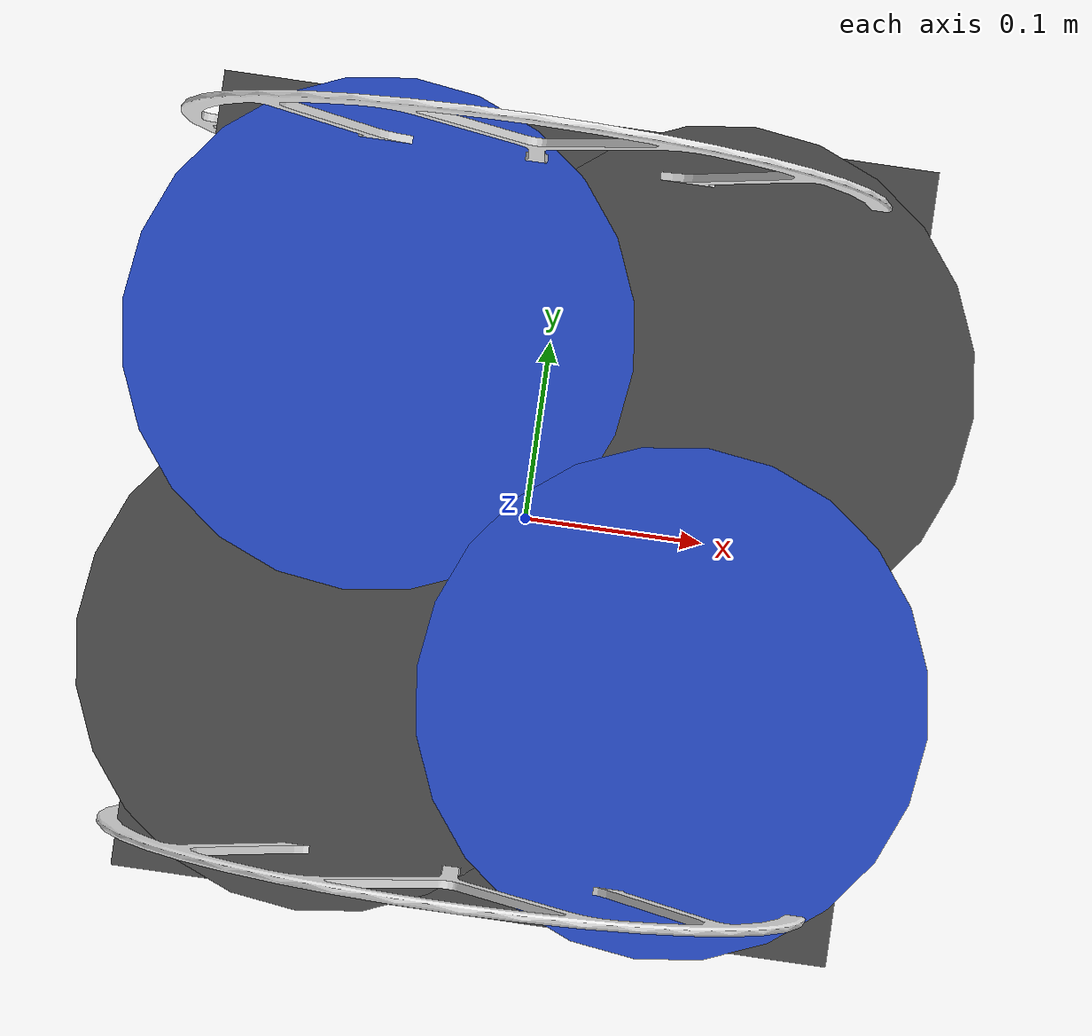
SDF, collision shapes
<?xml version="1.0"?>
<sdf version="1.5">
  <model name='iris_airground'>
    <include>
      <uri>model://AirGround</uri>
      <pose>0 0 0.18 0 0 0</pose>
    </include>

    <include>
      <uri>model://livox_laser</uri>
      <pose>0 0 0.18 0 0 0</pose>
    </include>

    <joint name="livox_laser_joint" type="fixed">
      <child>livox_laser::link</child>
      <parent>AirGround::base_link</parent>
      <axis>
        <xyz>0 0 1</xyz>
        <limit>
          <upper>0</upper>
          <lower>0</lower>
        </limit>
      </axis>
    </joint>

   <plugin name="arducopter_plugin" filename="libArduPilotPlugin.so">
      <fdm_addr>127.0.0.1</fdm_addr>
      <fdm_port_in>9002</fdm_port_in>
      <fdm_port_out>9003</fdm_port_out>
      <!--
          Require by APM :
          Only change model and gazebo from XYZ to XY-Z coordinates
      -->
      <modelXYZToAirplaneXForwardZDown>0 0 0 3.141593 0 0</modelXYZToAirplaneXForwardZDown>
      <gazeboXYZToNED>0 0 0 3.141593 0 0</gazeboXYZToNED>
      <imuName>iris_airground::AirGround::imu_link::imu_sensor</imuName>
      <connectionTimeoutMaxCount>5</connectionTimeoutMaxCount>
      <control channel="0">
      <!--
          incoming control command [0, 1]
          so offset it by 0 to get [0, 1]
          and divide max target by 1.
          offset = 0
          multiplier = 838 max rpm / 1 = 838
        -->
        <type>VELOCITY</type>
        <offset>0</offset>
        <p_gain>0.20</p_gain>
        <i_gain>0</i_gain>
        <d_gain>0</d_gain>
        <i_max>0</i_max>
        <i_min>0</i_min>
        <cmd_max>2.5</cmd_max>
        <cmd_min>-2.5</cmd_min>
        <jointName>AirGround::motor_1_joint</jointName>
        <multiplier>838</multiplier>
        <controlVelocitySlowdownSim>1</controlVelocitySlowdownSim>
      </control>
      <control channel="1">
        <type>VELOCITY</type>
        <offset>0</offset>
        <p_gain>0.20</p_gain>
        <i_gain>0</i_gain>
        <d_gain>0</d_gain>
        <i_max>0</i_max>
        <i_min>0</i_min>
        <cmd_max>2.5</cmd_max>
        <cmd_min>-2.5</cmd_min>
        <jointName>AirGround::motor_2_joint</jointName>
        <multiplier>838</multiplier>
        <controlVelocitySlowdownSim>1</controlVelocitySlowdownSim>
      </control>
      <control channel="2">
        <type>VELOCITY</type>
        <offset>0</offset>
        <p_gain>0.20</p_gain>
        <i_gain>0</i_gain>
        <d_gain>0</d_gain>
        <i_max>0</i_max>
        <i_min>0</i_min>
        <cmd_max>2.5</cmd_max>
        <cmd_min>-2.5</cmd_min>
        <jointName>AirGround::motor_3_joint</jointName>
        <multiplier>-838</multiplier>
        <controlVelocitySlowdownSim>1</controlVelocitySlowdownSim>
      </control>
      <control channel="3">
        <type>VELOCITY</type>
        <offset>0</offset>
        <p_gain>0.20</p_gain>
        <i_gain>0</i_gain>
        <d_gain>0</d_gain>
        <i_max>0</i_max>
        <i_min>0</i_min>
        <cmd_max>2.5</cmd_max>
        <cmd_min>-2.5</cmd_min>
        <jointName>AirGround::motor_4_joint</jointName>
        <multiplier>-838</multiplier>
        <controlVelocitySlowdownSim>1</controlVelocitySlowdownSim>
      </control>
    </plugin>
  </model>
</sdf>

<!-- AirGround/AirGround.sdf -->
<sdf version='1.5'>
  <model name='AirGround'>
    <link name='base_link'>
      <inertial>
        <pose>0 0 0 0 0 0</pose>
        <mass>1.5</mass>
        <inertia>
          <ixx>0.029125</ixx>
          <ixy>0</ixy>
          <ixz>0</ixz>
          <iyy>0.029125</iyy>
          <iyz>0</iyz>
          <izz>0.055225</izz>
        </inertia>
      </inertial>
      <collision name='base_link_collision'>
        <pose>0 0 0 0 -0 0</pose>
        <geometry>
           <box>
            <size>0.36 0.4 0.05</size>
          </box>
        </geometry>
        <surface>
          <contact>
            <ode>
              <max_vel>100.0</max_vel>
              <min_depth>0.001</min_depth>
            </ode>
          </contact>
        </surface>
       </collision>

      <visual name='base_link_visual'>
        <pose>-0.015 0 0.0 0 -0 0</pose>
        <geometry>
          <mesh>
            <scale>1 1 1</scale>
            <uri>model://AirGround/meshes/base_link.STL</uri>
          </mesh>
        </geometry>
         <material>
          <script>
            <name>Gazebo/DarkGrey</name>
          </script>
        </material>
      </visual>
      <gravity>1</gravity>
      <velocity_decay/>
    </link>
    <joint name='leftwheel_joint' type='revolute'>
      <pose relative_to='base_link'>0.0 -0.18 0.02 0 0 0</pose>
      <parent>base_link</parent>
      <child>leftwheel_Link</child>
      <axis>
        <xyz>0 -1 0</xyz>
        <limit>
          <lower>-1e+16</lower>
          <upper>1e+16</upper>
        </limit>
        <dynamics>
          <damping>0.004</damping>
          <friction>0.0001</friction>
        </dynamics>
      </axis>
    <use_parent_model_frame>true</use_parent_model_frame>
    </joint>
    <link name='leftwheel_Link'>
      <pose relative_to='leftwheel_joint'>0 0 0 0 -0 0</pose>
      <inertial>
        <pose>0 0 0 0 -0 0</pose>
        <mass>0.05</mass>
        <inertia>
          <ixx>5.0167e-4</ixx>
          <ixy>0</ixy>
          <ixz>0</ixz>
          <iyy>1e-3</iyy>
          <iyz>0</iyz>
          <izz>5.0167e-4</izz>
        </inertia>
      </inertial>
      <collision name='leftwheel_Link_collision'>
        <pose>0 0 0 0 -0 0</pose>
        <geometry>
          <mesh>
            <scale>1 1 1</scale>
            <uri>model://AirGround/meshes/leftwheel_Link.STL</uri>
          </mesh>
        </geometry>
        <surface>
          <friction>
            <ode>
              <mu>1e+11</mu>
              <mu2>1e+16</mu2>
              <fdir1>0 0 1</fdir1>
              <slip1>0.0</slip1>
              <slip2>0.0</slip2>
            </ode>
          </friction>
          <contact>
            <ode>
              <min_depth>0.005</min_depth>
              <kp>1e8</kp>
            </ode>
          </contact>
        </surface>
      </collision>
      <visual name='leftwheel_Link_visual'>
        <pose>0 0 0 0 -0 0</pose>
        <geometry>
          <mesh>
            <scale>1 1 1</scale>
            <uri>model://AirGround/meshes/leftwheel_Link.STL</uri>
          </mesh>
        </geometry>
        <material>
          <script>
            <name>Gazebo/White</name>
            <uri>file://media/materials/scripts/gazebo.material</uri>
          </script>
        </material>
      </visual>
    </link>

     <joint name='rightwheel_joint' type='revolute'>
      <pose relative_to='base_link'>0 0.18 0.02 0 -0 0</pose>
      <parent>base_link</parent>
      <child>rightwheel_link</child>
      <axis>
        <xyz>0 1 0</xyz>
        <limit>
          <lower>-1e+16</lower>
          <upper>1e+16</upper>
        </limit>
        <dynamics>
          <damping>0.004</damping>
          <friction>0.0001</friction>
        </dynamics>
      </axis>
    <use_parent_model_frame>true</use_parent_model_frame>
    </joint>
    <link name='rightwheel_link'>
      <pose relative_to='rightwheel_joint'>0 0 0 0 -0 0</pose>
      <inertial>
        <pose>0 0 0 0 -0 0</pose>
        <mass>0.05</mass>
        <inertia>
          <ixx>5.0167e-4</ixx>
          <ixy>0</ixy>
          <ixz>0</ixz>
          <iyy>1e-3</iyy>
          <iyz>0</iyz>
          <izz>5.0167e-4</izz>
        </inertia>
      </inertial>
      <collision name='rightwheel_link_collision'>
        <pose>0 0 0 0 -0 0</pose>
        <geometry>
          <mesh>
            <scale>1 1 1</scale>
            <uri>model://AirGround/meshes/rightwheel_link.STL</uri>
          </mesh>
        </geometry>
        <surface>
          <friction>
            <ode>
              <mu>1e+11</mu>
              <mu2>1e+16</mu2>
              <fdir1>0 0 1</fdir1>
              <slip1>0.0</slip1>
              <slip2>0.0</slip2>
            </ode>
          </friction>
          <contact>
            <ode>
              <min_depth>0.005</min_depth>
              <kp>1e8</kp>
            </ode>
          </contact>
        </surface>
      </collision>
      <visual name='rightwheel_link_visual'>
        <pose>0 0 0 0 -0 0</pose>
        <geometry>
          <mesh>
            <scale>1 1 1</scale>
            <uri>model://AirGround/meshes/rightwheel_link.STL</uri>
          </mesh>
        </geometry>
        <material>
          <script>
            <name>Gazebo/White</name>
            <uri>file://media/materials/scripts/gazebo.material</uri>
          </script>
        </material>
      </visual>
    </link>

    <joint name='motor_1_joint' type='revolute'>
      <pose relative_to='base_link'>0.085244 -0.08055 0.029175 0 -0 0</pose>
      <parent>base_link</parent>
      <child>motor1_link</child>
      <axis>
        <xyz>0 0 1</xyz>
        <limit>
          <lower>-1e+16</lower>
          <upper>1e+16</upper>
        </limit>
         <dynamics>
          <damping>0.004</damping>
        </dynamics>
      </axis>
    </joint>
    <link name='motor1_link'>
      <pose relative_to='motor_1_joint'>0 0 0 0 -0 0</pose>
      <inertial>
        <pose>0 0 0 0 0 0</pose>
        <mass>0.005</mass>
        <inertia>
          <ixx>9.75e-07</ixx>
          <ixy>0</ixy>
          <ixz>0</ixz>
          <iyy>0.000273104</iyy>
          <iyz>0</iyz>
          <izz>0.000274004</izz>
        </inertia>
      </inertial>
      <collision name='motor1_link_collision'>
        <pose>0 0 0 0 -0 0</pose>
        <geometry>
          <cylinder>
            <length>0.005</length>
            <radius>0.128</radius>
          </cylinder>
        </geometry>
        <surface>
          <contact>
            <ode/>
          </contact>
          <friction>
            <ode/>
          </friction>
        </surface>
      </collision>
      <visual name='motor1_link_visual'>
        <pose>0 0 0 0 -0 0</pose>
        <geometry>
          <mesh>
            <scale>1 1 1</scale>
            <uri>model://AirGround/meshes/motor1_link.STL</uri>
          </mesh>
        </geometry>
        <material>
          <script>
            <name>Gazebo/Blue</name>
            <uri>file://media/materials/scripts/gazebo.material</uri>
          </script>
        </material>
      </visual>
      <gravity>1</gravity>
      <velocity_decay/>
    </link>
    <joint name='motor_2_joint' type='revolute'>
      <pose relative_to='base_link'>-0.085244 0.08055 0.029175 0 -0 0</pose>
      <parent>base_link</parent>
      <child>motor2_link</child>
      <axis>
        <xyz>0 0 1</xyz>
        <limit>
          <lower>-1e+16</lower>
          <upper>1e+16</upper>
        </limit>
        <dynamics>
          <damping>0.004</damping>
        </dynamics>
      </axis>
    </joint>
    <link name='motor2_link'>
      <pose relative_to='motor_2_joint'>0 0 0 0 -0 0</pose>
      <inertial>
        <pose>0 0 0 0 0 0</pose>
        <mass>0.005</mass>
        <inertia>
          <ixx>9.75e-07</ixx>
          <ixy>0</ixy>
          <ixz>0</ixz>
          <iyy>0.000273104</iyy>
          <iyz>0</iyz>
          <izz>0.000274004</izz>
        </inertia>
      </inertial>
      <collision name='motor2_link_collision'>
        <pose>0 0 0 0 -0 0</pose>
        <geometry>
          <cylinder>
            <length>0.005</length>
            <radius>0.128</radius>
          </cylinder>
        </geometry>
        <surface>
          <contact>
            <ode/>
          </contact>
          <friction>
            <ode/>
          </friction>
        </surface>
      </collision>
      <visual name='motor2_link_visual'>
        <pose>0 0 0 0 -0 0</pose>
        <geometry>
          <mesh>
            <scale>1 1 1</scale>
            <uri>model://AirGround/meshes/motor2_link.STL</uri>
          </mesh>
        </geometry>
        <material>
          <script>
            <name>Gazebo/Blue</name>
            <uri>file://media/materials/scripts/gazebo.material</uri>
          </script>
        </material>
      </visual>
      <gravity>1</gravity>
      <velocity_decay/>
    </link>
    <joint name='motor_3_joint' type='revolute'>
      <pose relative_to='base_link'>0.085244 0.08055 0.029175 0 -0 0</pose>
      <parent>base_link</parent>
      <child>motor3_link</child>
      <axis>
        <xyz>0 0 1</xyz>
        <limit>
          <lower>-1e+16</lower>
          <upper>1e+16</upper>
        </limit>
        <dynamics>
          <damping>0.004</damping>
        </dynamics>
      </axis>
    </joint>
    <link name='motor3_link'>
      <pose relative_to='motor_3_joint'>0 0 0 0 -0 0</pose>
      <inertial>
        <pose>0 0 0 0 0 0</pose>
        <mass>0.005</mass>
        <inertia>
          <ixx>9.75e-07</ixx>
          <ixy>0</ixy>
          <ixz>0</ixz>
          <iyy>0.000273104</iyy>
          <iyz>0</iyz>
          <izz>0.000274004</izz>
        </inertia>
      </inertial>
      <collision name='motor3_link_collision'>
        <pose>0 0 0 0 -0 0</pose>
        <geometry>
          <cylinder>
            <length>0.005</length>
            <radius>0.128</radius>
          </cylinder>
        </geometry>
        <surface>
          <contact>
            <ode/>
          </contact>
          <friction>
            <ode/>
          </friction>
        </surface>
      </collision>
      <visual name='motor3_link_visual'>
        <pose>0 0 0 0 -0 0</pose>
        <geometry>
          <mesh>
            <scale>1 1 1</scale>
            <uri>model://AirGround/meshes/motor3_link.STL</uri>
          </mesh>
        </geometry>
        <material>
          <script>
            <name>Gazebo/DarkGrey</name>
            <uri>file://media/materials/scripts/gazebo.material</uri>
          </script>
        </material>
      </visual>
       <gravity>1</gravity>
      <velocity_decay/>
    </link>
    <joint name='motor_4_joint' type='revolute'>
      <pose relative_to='base_link'>-0.085244 -0.08055 0.029175 0 -0 0</pose>
      <parent>base_link</parent>
      <child>motor4_link</child>
      <axis>
        <xyz>0 0 1</xyz>
        <limit>
          <lower>-1e+16</lower>
          <upper>1e+16</upper>
        </limit>
        <dynamics>
          <damping>0.004</damping>
        </dynamics>
      </axis>
    </joint>
    <link name='motor4_link'>
      <pose relative_to='motor_4_joint'>0 0 0 0 -0 0</pose>
      <inertial>
        <pose>0 0 0 0 0 0</pose>
        <mass>0.005</mass>
        <inertia>
          <ixx>9.75e-07</ixx>
          <ixy>0</ixy>
          <ixz>0</ixz>
          <iyy>0.000273104</iyy>
          <iyz>0</iyz>
          <izz>0.000274004</izz>
        </inertia>
      </inertial>
      <collision name='motor4_link_collision'>
        <pose>0 0 0 0 -0 0</pose>
        <geometry>
          <cylinder>
            <length>0.005</length>
            <radius>0.128</radius>
          </cylinder>
        </geometry>
        <surface>
          <contact>
            <ode/>
          </contact>
          <friction>
            <ode/>
          </friction>
        </surface>
      </collision>
      <visual name='motor4_link_visual'>
        <pose>0 0 0 0 -0 0</pose>
        <geometry>
          <mesh>
            <scale>1 1 1</scale>
            <uri>model://AirGround/meshes/motor4_link.STL</uri>
          </mesh>
        </geometry>
        <material>
          <script>
            <name>Gazebo/DarkGrey</name>
            <uri>file://media/materials/scripts/gazebo.material</uri>
          </script>
        </material>
      </visual>
      <gravity>1</gravity>
      <velocity_decay/>
    </link>

    <link name='imu_link'>
      <inertial>
        <pose>0 0 0 0 0 0</pose>
        <mass>0.15</mass>
        <inertia>
          <ixx>0.00001</ixx>
          <ixy>0</ixy>
          <ixz>0</ixz>
          <iyy>0.00002</iyy>
          <iyz>0</iyz>
          <izz>0.00002</izz>
        </inertia>
      </inertial>
      <sensor name="imu_sensor" type="imu">
        <pose>0 0 0 3.141593 0 0</pose>
        <always_on>1</always_on>
        <update_rate>100.0</update_rate>
      </sensor>
    </link>
    <joint name='imu_joint' type='revolute'>
      <child>imu_link</child>
      <parent>base_link</parent>
      <axis>
        <xyz>0 0 1</xyz>
        <limit>
          <lower>0</lower>
          <upper>0</upper>
          <effort>0</effort>
          <velocity>0</velocity>
        </limit>
        <dynamics>
          <damping>1.0</damping>
        </dynamics>
        <use_parent_model_frame>1</use_parent_model_frame>
      </axis>
      <physics>
        <ode>
          <implicit_spring_damper>1</implicit_spring_damper>
        </ode>
      </physics>
    </joint>

     <plugin name="rotor_0_blade_1" filename="libLiftDragPlugin.so">
      <a0>0.3</a0>
      <alpha_stall>1.4</alpha_stall>
      <cla>4.2500</cla>
      <cda>0.10</cda>
      <cma>0.00</cma>
      <cla_stall>-0.025</cla_stall>
      <cda_stall>0.0</cda_stall>
      <cma_stall>0.0</cma_stall>
      <area>0.002</area>
      <air_density>1.2041</air_density>
      <cp>0.084 0 0</cp>
      <forward>0 1 0</forward>
      <upward>0 0 1</upward>
      <link_name>AirGround::motor1_link</link_name>
    </plugin>
    <plugin name="rotor_0_blade_2" filename="libLiftDragPlugin.so">
      <a0>0.3</a0>
      <alpha_stall>1.4</alpha_stall>
      <cla>4.2500</cla>
      <cda>0.10</cda>
      <cma>0.00</cma>
      <cla_stall>-0.025</cla_stall>
      <cda_stall>0.0</cda_stall>
      <cma_stall>0.0</cma_stall>
      <area>0.002</area>
      <air_density>1.2041</air_density>
      <cp>-0.084 0 0</cp>
      <forward>0 -1 0</forward>
      <upward>0 0 1</upward>
      <link_name>AirGround::motor1_link</link_name>
    </plugin>

    <plugin name="rotor_1_blade_1" filename="libLiftDragPlugin.so">
      <a0>0.3</a0>
      <alpha_stall>1.4</alpha_stall>
      <cla>4.2500</cla>
      <cda>0.10</cda>
      <cma>0.00</cma>
      <cla_stall>-0.025</cla_stall>
      <cda_stall>0.0</cda_stall>
      <cma_stall>0.0</cma_stall>
      <area>0.002</area>
      <air_density>1.2041</air_density>
      <cp>0.084 0 0</cp>
      <forward>0 1 0</forward>
      <upward>0 0 1</upward>
      <link_name>AirGround::motor2_link</link_name>
    </plugin>
    <plugin name="rotor_1_blade_2" filename="libLiftDragPlugin.so">
      <a0>0.3</a0>
      <alpha_stall>1.4</alpha_stall>
      <cla>4.2500</cla>
      <cda>0.10</cda>
      <cma>0.00</cma>
      <cla_stall>-0.025</cla_stall>
      <cda_stall>0.0</cda_stall>
      <cma_stall>0.0</cma_stall>
      <area>0.002</area>
      <air_density>1.2041</air_density>
      <cp>-0.084 0 0</cp>
      <forward>0 -1 0</forward>
      <upward>0 0 1</upward>
      <link_name>AirGround::motor2_link</link_name>
    </plugin>

    <plugin name="rotor_2_blade_1" filename="libLiftDragPlugin.so">
      <a0>0.3</a0>
      <alpha_stall>1.4</alpha_stall>
      <cla>4.2500</cla>
      <cda>0.10</cda>
      <cma>0.00</cma>
      <cla_stall>-0.025</cla_stall>
      <cda_stall>0.0</cda_stall>
      <cma_stall>0.0</cma_stall>
      <area>0.002</area>
      <air_density>1.2041</air_density>
      <cp>0.084 0 0</cp>
      <forward>0 -1 0</forward>
      <upward>0 0 1</upward>
      <link_name>AirGround::motor3_link</link_name>
    </plugin>
    <plugin name="rotor_2_blade_2" filename="libLiftDragPlugin.so">
      <a0>0.3</a0>
      <alpha_stall>1.4</alpha_stall>
      <cla>4.2500</cla>
      <cda>0.10</cda>
      <cma>0.00</cma>
      <cla_stall>-0.025</cla_stall>
      <cda_stall>0.0</cda_stall>
      <cma_stall>0.0</cma_stall>
      <area>0.002</area>
      <air_density>1.2041</air_density>
      <cp>-0.084 0 0</cp>
      <forward>0 1 0</forward>
      <upward>0 0 1</upward>
      <link_name>AirGround::motor3_link</link_name>
    </plugin>

    <plugin name="rotor_3_blade_1" filename="libLiftDragPlugin.so">
      <a0>0.3</a0>
      <alpha_stall>1.4</alpha_stall>
      <cla>4.2500</cla>
      <cda>0.10</cda>
      <cma>0.00</cma>
      <cla_stall>-0.025</cla_stall>
      <cda_stall>0.0</cda_stall>
      <cma_stall>0.0</cma_stall>
      <area>0.002</area>
      <air_density>1.2041</air_density>
      <cp>0.084 0 0</cp>
      <forward>0 -1 0</forward>
      <upward>0 0 1</upward>
      <link_name>AirGround::motor4_link</link_name>
    </plugin>
    <plugin name="rotor_3_blade_2" filename="libLiftDragPlugin.so">
      <a0>0.3</a0>
      <alpha_stall>1.4</alpha_stall>
      <cla>4.2500</cla>
      <cda>0.10</cda>
      <cma>0.00</cma>
      <cla_stall>-0.025</cla_stall>
      <cda_stall>0.0</cda_stall>
      <cma_stall>0.0</cma_stall>
      <area>0.002</area>
      <air_density>1.2041</air_density>
      <cp>-0.084 0 0</cp>
      <forward>0 1 0</forward>
      <upward>0 0 1</upward>
      <link_name>AirGround::motor4_link</link_name>
    </plugin>
  </model>
</sdf>

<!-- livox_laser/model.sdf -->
<sdf version="1.4">
  <model name="livox_laser">
    <link name="link">
      <pose>0 0 0 0 0 0</pose>
      <inertial>
        <pose>0 0 0 0 0 0</pose>
        <mass>0.01</mass>
        <inertia>
          <ixx>2.1733e-6</ixx>
          <ixy>0</ixy>
          <ixz>0</ixz>
          <iyy>2.1733e-6</iyy>
          <iyz>0</iyz>
          <izz>1.8e-7</izz>
        </inertia>
      </inertial>
      <visual name="visual">
        <geometry>
          <mesh>
            <uri>model://livox_laser/mesh/mid360.stl</uri>
            <!-- From mm to m -->
            <scale>0.001 0.001 0.001</scale>
          </mesh>
        </geometry>
        <material>
          <script>
            <name>Gazebo/Blue</name>
          </script>
        </material>
      </visual>
      <sensor name='laser_livox' type='ray'>
        <visualize>1</visualize>
        <update_rate>100</update_rate>
        <plugin name='gazebo_ros_laser_controller' filename='liblivox_laser_simulation.so'>
          <ray>
            <scan>
              <horizontal>
                <samples>100</samples>
                <resolution>1</resolution>
                <min_angle>0</min_angle>
                <max_angle>6.28318</max_angle>
              </horizontal>
              <vertical>
                <samples>360</samples>
                <resolution>1</resolution>
                <min_angle>-0.12601266555555554</min_angle>
                <max_angle>0.9637699988888888</max_angle>
              </vertical>
            </scan>
            <range>
              <min>0.1</min>
              <max>200.0</max>
              <resolution>0.002</resolution>
            </range>
            <noise>
              <type>gaussian</type>
              <mean>0.0</mean>
              <stddev>0.01</stddev>
            </noise>
          </ray>
          <visualize>1</visualize>
          <samples>24000</samples>
          <downsample>1</downsample>
          <csv_file_name>
            model://livox_laser/scan_mode/mid360.csv
          </csv_file_name>
          <ros_topic>scan</ros_topic>
        </plugin>
        <pose>0 0 0.5557 0 -0 0</pose>
      </sensor>
    </link>
  </model>
</sdf>
